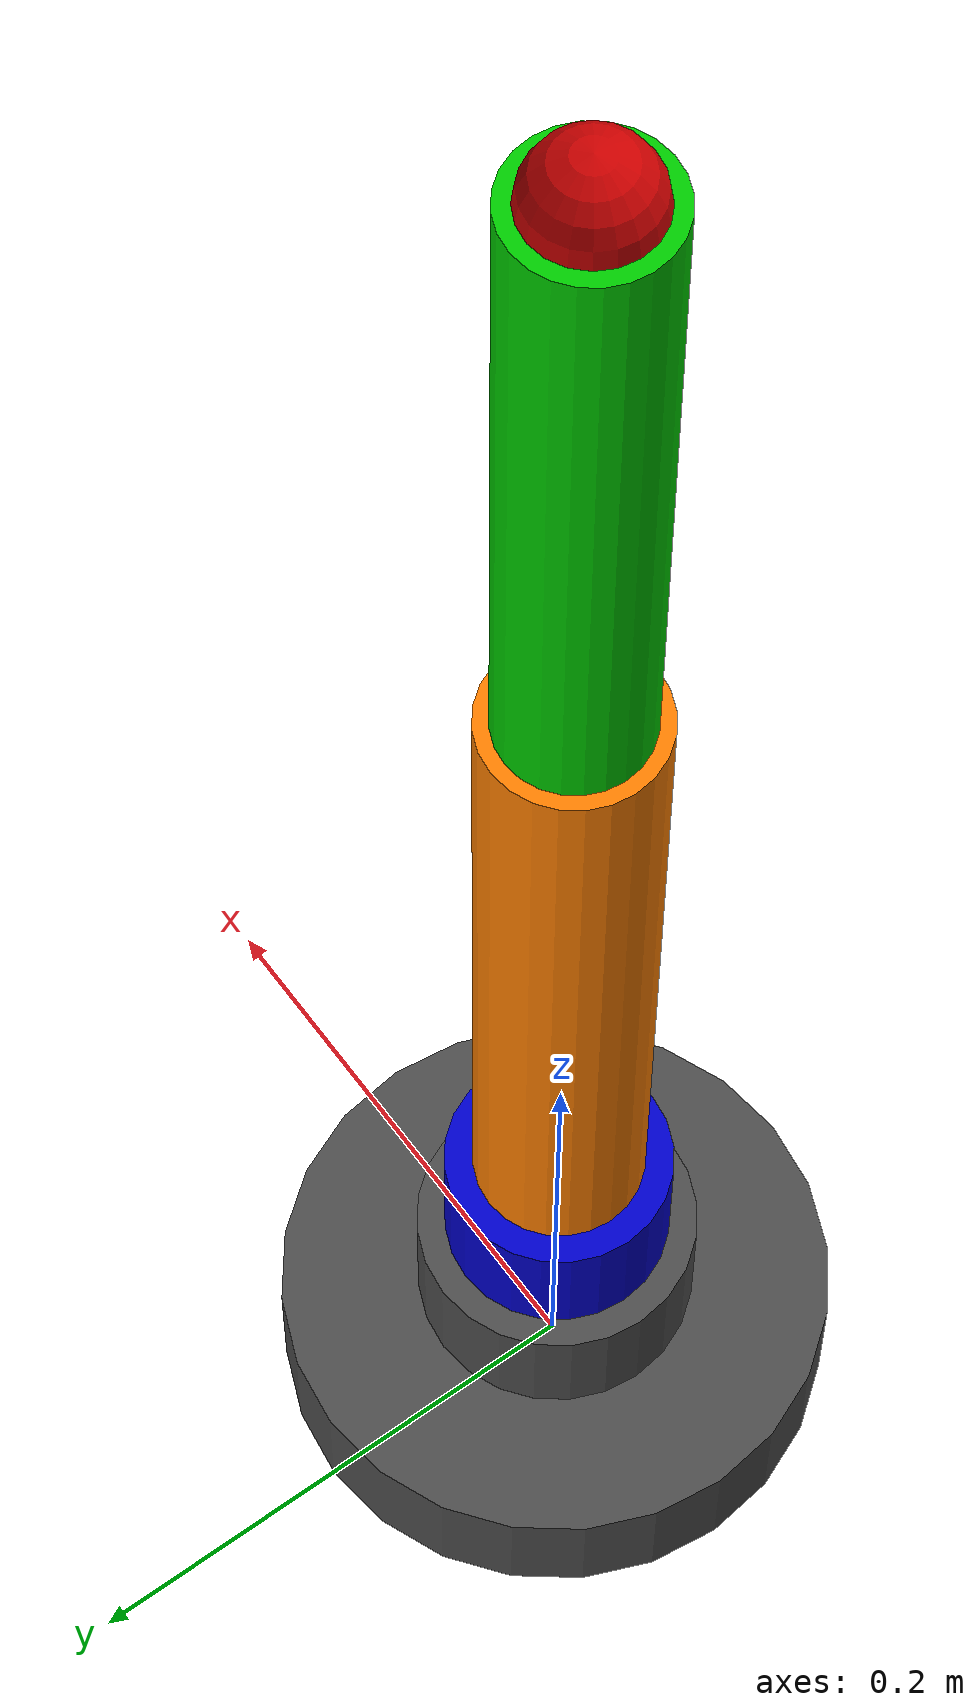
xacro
<?xml version="1.0"?>
<robot xmlns:xacro="http://www.ros.org/wiki/xacro" name="robo_arm2">

  <!-- Include Gazebo simulation xacro -->
  <xacro:include filename="$(find robo_arm2_description)/urdf/robo_arm2.gazebo.xacro" />

  <!-- Constants -->
  <xacro:property name="base_radius" value="0.10" />
  <xacro:property name="base_height" value="0.05" />
  <xacro:property name="link1_radius" value="0.04" />
  <xacro:property name="link1_length" value="0.05" />
  <xacro:property name="link2_radius" value="0.03" />
  <xacro:property name="link2_length" value="0.30" />
  <xacro:property name="link3_radius" value="0.025" />
  <xacro:property name="link3_length" value="0.25" />
  <xacro:property name="ee_radius" value="0.02" />
  <xacro:property name="pillar_radius" value="0.05" />
  <xacro:property name="pillar_height" value="0.05" />

  <!-- Inertia macro for cylinders (origin at center of mass) -->
  <xacro:macro name="cylinder_inertia" params="m r h">
    <inertial>
      <mass value="${m}" />
      <origin xyz="0 0 ${h/2}" rpy="0 0 0" />
      <inertia ixx="${m*(3*r*r+h*h)/12}" ixy="0" ixz="0"
               iyy="${m*(3*r*r+h*h)/12}" iyz="0"
               izz="${m*(r*r)/2}" />
    </inertial>
  </xacro:macro>

  <!-- Inertia macro for spheres -->
  <xacro:macro name="sphere_inertia" params="m r">
    <inertial>
      <mass value="${m}" />
      <origin xyz="0 0 0" rpy="0 0 0" />
      <inertia ixx="${2*m*r*r/5}" ixy="0" ixz="0"
               iyy="${2*m*r*r/5}" iyz="0"
               izz="${2*m*r*r/5}" />
    </inertial>
  </xacro:macro>

  <!-- Colors -->
  <material name="dark_grey">
    <color rgba="0.3 0.3 0.3 1.0" />
  </material>
  <material name="blue">
    <color rgba="0.0 0.0 0.8 1.0" />
  </material>
  <material name="orange">
    <color rgba="1.0 0.5 0.0 1.0" />
  </material>
  <material name="red">
    <color rgba="0.8 0.0 0.0 1.0" />
  </material>
  <material name="green">
    <color rgba="0.0 0.8 0.0 1.0" />
  </material>

  <!-- ==================== BASE LINK ==================== -->
  <link name="base_link">
    <visual>
      <origin xyz="0 0 ${base_height/2}" rpy="0 0 0" />
      <geometry>
        <cylinder radius="${base_radius}" length="${base_height}" />
      </geometry>
      <material name="dark_grey" />
    </visual>
    <collision>
      <origin xyz="0 0 ${base_height/2}" rpy="0 0 0" />
      <geometry>
        <cylinder radius="${base_radius}" length="${base_height}" />
      </geometry>
    </collision>
    <xacro:cylinder_inertia m="1.0" r="${base_radius}" h="${base_height}" />
  </link>

  <!-- ==================== PILLAR (part of base) ==================== -->
  <link name="pillar_link">
    <visual>
      <origin xyz="0 0 ${pillar_height/2}" rpy="0 0 0" />
      <geometry>
        <cylinder radius="${pillar_radius}" length="${pillar_height}" />
      </geometry>
      <material name="dark_grey" />
    </visual>
    <collision>
      <origin xyz="0 0 ${pillar_height/2}" rpy="0 0 0" />
      <geometry>
        <cylinder radius="${pillar_radius}" length="${pillar_height}" />
      </geometry>
    </collision>
    <xacro:cylinder_inertia m="0.5" r="${pillar_radius}" h="${pillar_height}" />
  </link>

  <joint name="base_to_pillar" type="fixed">
    <parent link="base_link" />
    <child link="pillar_link" />
    <origin xyz="0 0 ${base_height}" rpy="0 0 0" />
  </joint>

  <!-- ==================== JOINT1: Base Rotation (Z-axis) ==================== -->
  <link name="link1">
    <visual>
      <origin xyz="0 0 ${link1_length/2}" rpy="0 0 0" />
      <geometry>
        <cylinder radius="${link1_radius}" length="${link1_length}" />
      </geometry>
      <material name="blue" />
    </visual>
    <collision>
      <origin xyz="0 0 ${link1_length/2}" rpy="0 0 0" />
      <geometry>
        <cylinder radius="${link1_radius}" length="${link1_length}" />
      </geometry>
    </collision>
    <xacro:cylinder_inertia m="0.3" r="${link1_radius}" h="${link1_length}" />
  </link>

  <joint name="joint1" type="revolute">
    <parent link="pillar_link" />
    <child link="link1" />
    <origin xyz="0 0 ${pillar_height}" rpy="0 0 0" />
    <axis xyz="0 0 1" />
    <limit lower="-3.14159" upper="3.14159" effort="50.0" velocity="1.0" />
    <dynamics damping="0.01" friction="0.01" />
  </joint>

  <!-- ==================== JOINT2: Elbow Pitch (Y-axis) ==================== -->
  <link name="link2">
    <visual>
      <origin xyz="0 0 ${link2_length/2}" rpy="0 0 0" />
      <geometry>
        <cylinder radius="${link2_radius}" length="${link2_length}" />
      </geometry>
      <material name="orange" />
    </visual>
    <collision>
      <origin xyz="0 0 ${link2_length/2}" rpy="0 0 0" />
      <geometry>
        <cylinder radius="${link2_radius}" length="${link2_length}" />
      </geometry>
    </collision>
    <xacro:cylinder_inertia m="0.2" r="${link2_radius}" h="${link2_length}" />
  </link>

  <joint name="joint2" type="revolute">
    <parent link="link1" />
    <child link="link2" />
    <origin xyz="0 0 ${link1_length}" rpy="0 0 0" />
    <axis xyz="0 1 0" />
    <limit lower="-1.5708" upper="3.14159" effort="30.0" velocity="1.0" />
    <dynamics damping="0.01" friction="0.01" />
  </joint>

  <!-- ==================== JOINT3: Wrist Pitch (Y-axis) ==================== -->
  <link name="link3">
    <visual>
      <origin xyz="0 0 ${link3_length/2}" rpy="0 0 0" />
      <geometry>
        <cylinder radius="${link3_radius}" length="${link3_length}" />
      </geometry>
      <material name="green" />
    </visual>
    <collision>
      <origin xyz="0 0 ${link3_length/2}" rpy="0 0 0" />
      <geometry>
        <cylinder radius="${link3_radius}" length="${link3_length}" />
      </geometry>
    </collision>
    <xacro:cylinder_inertia m="0.1" r="${link3_radius}" h="${link3_length}" />
  </link>

  <joint name="joint3" type="revolute">
    <parent link="link2" />
    <child link="link3" />
    <origin xyz="0 0 ${link2_length}" rpy="0 0 0" />
    <axis xyz="0 1 0" />
    <limit lower="-3.14159" upper="3.14159" effort="20.0" velocity="1.0" />
    <dynamics damping="0.01" friction="0.01" />
  </joint>

  <!-- ==================== END EFFECTOR ==================== -->
  <link name="end_effector">
    <visual>
      <origin xyz="0 0 0" rpy="0 0 0" />
      <geometry>
        <sphere radius="${ee_radius}" />
      </geometry>
      <material name="red" />
    </visual>
    <collision>
      <origin xyz="0 0 0" rpy="0 0 0" />
      <geometry>
        <sphere radius="${ee_radius}" />
      </geometry>
    </collision>
    <xacro:sphere_inertia m="0.02" r="${ee_radius}" />
  </link>

  <joint name="ee_joint" type="fixed">
    <parent link="link3" />
    <child link="end_effector" />
    <origin xyz="0 0 ${link3_length}" rpy="0 0 0" />
  </joint>

  <!-- ==================== ros2_control ==================== -->
  <ros2_control name="MockSystem" type="system">
    <hardware>
      <plugin>mock_components/GenericSystem</plugin>
      <param name="fake_sensor_command_interfaces">true</param>
      <param name="state_following_offset">0.0</param>
    </hardware>
    <joint name="joint1">
      <command_interface name="position" />
      <state_interface name="position">
        <param name="initial_value">0.0</param>
      </state_interface>
      <state_interface name="velocity" />
    </joint>
    <joint name="joint2">
      <command_interface name="position" />
      <state_interface name="position">
        <param name="initial_value">0.0</param>
      </state_interface>
      <state_interface name="velocity" />
    </joint>
    <joint name="joint3">
      <command_interface name="position" />
      <state_interface name="position">
        <param name="initial_value">0.0</param>
      </state_interface>
      <state_interface name="velocity" />
    </joint>
  </ros2_control>

  <!-- Gazebo simulation plugin -->
  <xacro:robo_arm2_gazebo />

</robot>
